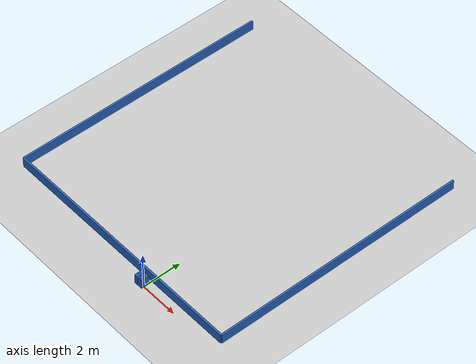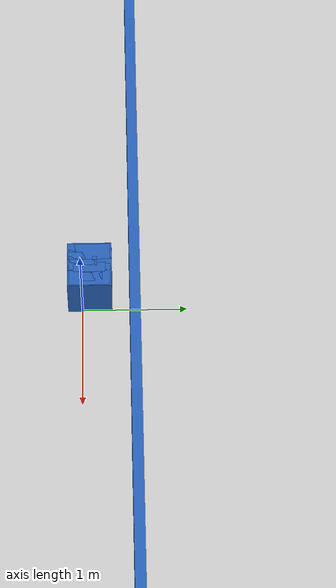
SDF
<?xml version="1.0" ?>
    <sdf version="1.5">
      <world name="default">
        <!-- A global light source -->
        <include>
          <uri>model://sun</uri>
        </include>
        <!-- A ground plane -->
        <include>
          <uri>model://ground_plane</uri>
        </include>

    <model name='libopen_space_final_T2B_120_90'>
      <static>1</static>
      <pose frame=''>-0.225000 0.075000 0.000000 0.000000 0.000000 0.000000</pose>
      <link name='link'>
        <inertial>
          <mass>1</mass>
          <inertia>
            <ixx>0.145833</ixx>
            <ixy>0</ixy>
            <ixz>0</ixz>
            <iyy>0.145833</iyy>
            <iyz>0</iyz>
            <izz>0.125</izz>
          </inertia>
        </inertial>
        <collision name='collision'>
          <geometry>
            <box>
              <size>0.11 0.24 1</size>
            </box>
          </geometry>
          <max_contacts>10</max_contacts>
          <surface>
            <contact>
              <ode/>
            </contact>
            <bounce/>
            <friction>
              <torsional>
                <ode/>
              </torsional>
              <ode/>
            </friction>
          </surface>
        </collision>
        <visual name='visual'>
          <geometry>
            <box>
              <size>0.11 0.24 1</size>
            </box>
          </geometry>
	    <material>
              <ambient>0.152000 0.379000 0.720000 1</ambient>
	      <diffuse>0.152000 0.379000 0.720000 1</diffuse>
          </material>
          <material>
            <script>
              <name>Gazebo/Grey</name>
              <uri>file://media/materials/scripts/gazebo.material</uri>
            </script>
          </material>
        </visual>
        <self_collide>0</self_collide>
        <kinematic>0</kinematic>
        <gravity>1</gravity>
      </link>
      <plugin name='libopen_space_final_T2B_120_90' filename='libopen_space_final_T2B_120_90.so'/>
    </model>

    <model name='libopen_space_final_T2B_140_77'>
      <static>1</static>
      <pose frame=''>-0.225000 0.075000 0.000000 0.000000 0.000000 0.000000</pose>
      <link name='link'>
        <inertial>
          <mass>1</mass>
          <inertia>
            <ixx>0.145833</ixx>
            <ixy>0</ixy>
            <ixz>0</ixz>
            <iyy>0.145833</iyy>
            <iyz>0</iyz>
            <izz>0.125</izz>
          </inertia>
        </inertial>
        <collision name='collision'>
          <geometry>
            <box>
              <size>0.46 0.42 1</size>
            </box>
          </geometry>
          <max_contacts>10</max_contacts>
          <surface>
            <contact>
              <ode/>
            </contact>
            <bounce/>
            <friction>
              <torsional>
                <ode/>
              </torsional>
              <ode/>
            </friction>
          </surface>
        </collision>
        <visual name='visual'>
          <geometry>
            <box>
              <size>0.46 0.42 1</size>
            </box>
          </geometry>
	    <material>
              <ambient>0.152000 0.379000 0.720000 1</ambient>
	      <diffuse>0.152000 0.379000 0.720000 1</diffuse>
          </material>
          <material>
            <script>
              <name>Gazebo/Grey</name>
              <uri>file://media/materials/scripts/gazebo.material</uri>
            </script>
          </material>
        </visual>
        <self_collide>0</self_collide>
        <kinematic>0</kinematic>
        <gravity>1</gravity>
      </link>
      <plugin name='libopen_space_final_T2B_140_77' filename='libopen_space_final_T2B_140_77.so'/>
    </model>

    <model name='libopen_space_final_T2B_111_12'>
      <static>1</static>
      <pose frame=''>-0.225000 0.075000 0.000000 0.000000 0.000000 0.000000</pose>
      <link name='link'>
        <inertial>
          <mass>1</mass>
          <inertia>
            <ixx>0.145833</ixx>
            <ixy>0</ixy>
            <ixz>0</ixz>
            <iyy>0.145833</iyy>
            <iyz>0</iyz>
            <izz>0.125</izz>
          </inertia>
        </inertial>
        <collision name='collision'>
          <geometry>
            <box>
              <size>0.36 0.16 1</size>
            </box>
          </geometry>
          <max_contacts>10</max_contacts>
          <surface>
            <contact>
              <ode/>
            </contact>
            <bounce/>
            <friction>
              <torsional>
                <ode/>
              </torsional>
              <ode/>
            </friction>
          </surface>
        </collision>
        <visual name='visual'>
          <geometry>
            <box>
              <size>0.36 0.16 1</size>
            </box>
          </geometry>
	    <material>
              <ambient>0.152000 0.379000 0.720000 1</ambient>
	      <diffuse>0.152000 0.379000 0.720000 1</diffuse>
          </material>
          <material>
            <script>
              <name>Gazebo/Grey</name>
              <uri>file://media/materials/scripts/gazebo.material</uri>
            </script>
          </material>
        </visual>
        <self_collide>0</self_collide>
        <kinematic>0</kinematic>
        <gravity>1</gravity>
      </link>
      <plugin name='libopen_space_final_T2B_111_12' filename='libopen_space_final_T2B_111_12.so'/>
    </model>

    <model name='libopen_space_final_T2B_112_54'>
      <static>1</static>
      <pose frame=''>-0.225000 0.075000 0.000000 0.000000 0.000000 0.000000</pose>
      <link name='link'>
        <inertial>
          <mass>1</mass>
          <inertia>
            <ixx>0.145833</ixx>
            <ixy>0</ixy>
            <ixz>0</ixz>
            <iyy>0.145833</iyy>
            <iyz>0</iyz>
            <izz>0.125</izz>
          </inertia>
        </inertial>
        <collision name='collision'>
          <geometry>
            <box>
              <size>0.27 0.41 1</size>
            </box>
          </geometry>
          <max_contacts>10</max_contacts>
          <surface>
            <contact>
              <ode/>
            </contact>
            <bounce/>
            <friction>
              <torsional>
                <ode/>
              </torsional>
              <ode/>
            </friction>
          </surface>
        </collision>
        <visual name='visual'>
          <geometry>
            <box>
              <size>0.27 0.41 1</size>
            </box>
          </geometry>
	    <material>
              <ambient>0.152000 0.379000 0.720000 1</ambient>
	      <diffuse>0.152000 0.379000 0.720000 1</diffuse>
          </material>
          <material>
            <script>
              <name>Gazebo/Grey</name>
              <uri>file://media/materials/scripts/gazebo.material</uri>
            </script>
          </material>
        </visual>
        <self_collide>0</self_collide>
        <kinematic>0</kinematic>
        <gravity>1</gravity>
      </link>
      <plugin name='libopen_space_final_T2B_112_54' filename='libopen_space_final_T2B_112_54.so'/>
    </model>

    <model name='libopen_space_final_T2B_100_36'>
      <static>1</static>
      <pose frame=''>-0.225000 0.075000 0.000000 0.000000 0.000000 0.000000</pose>
      <link name='link'>
        <inertial>
          <mass>1</mass>
          <inertia>
            <ixx>0.145833</ixx>
            <ixy>0</ixy>
            <ixz>0</ixz>
            <iyy>0.145833</iyy>
            <iyz>0</iyz>
            <izz>0.125</izz>
          </inertia>
        </inertial>
        <collision name='collision'>
          <geometry>
            <box>
              <size>0.44 0.39 1</size>
            </box>
          </geometry>
          <max_contacts>10</max_contacts>
          <surface>
            <contact>
              <ode/>
            </contact>
            <bounce/>
            <friction>
              <torsional>
                <ode/>
              </torsional>
              <ode/>
            </friction>
          </surface>
        </collision>
        <visual name='visual'>
          <geometry>
            <box>
              <size>0.44 0.39 1</size>
            </box>
          </geometry>
	    <material>
              <ambient>0.152000 0.379000 0.720000 1</ambient>
	      <diffuse>0.152000 0.379000 0.720000 1</diffuse>
          </material>
          <material>
            <script>
              <name>Gazebo/Grey</name>
              <uri>file://media/materials/scripts/gazebo.material</uri>
            </script>
          </material>
        </visual>
        <self_collide>0</self_collide>
        <kinematic>0</kinematic>
        <gravity>1</gravity>
      </link>
      <plugin name='libopen_space_final_T2B_100_36' filename='libopen_space_final_T2B_100_36.so'/>
    </model>

    <model name='libopen_space_final_T2B_73_39'>
      <static>1</static>
      <pose frame=''>-0.225000 0.075000 0.000000 0.000000 0.000000 0.000000</pose>
      <link name='link'>
        <inertial>
          <mass>1</mass>
          <inertia>
            <ixx>0.145833</ixx>
            <ixy>0</ixy>
            <ixz>0</ixz>
            <iyy>0.145833</iyy>
            <iyz>0</iyz>
            <izz>0.125</izz>
          </inertia>
        </inertial>
        <collision name='collision'>
          <geometry>
            <box>
              <size>0.11 0.37 1</size>
            </box>
          </geometry>
          <max_contacts>10</max_contacts>
          <surface>
            <contact>
              <ode/>
            </contact>
            <bounce/>
            <friction>
              <torsional>
                <ode/>
              </torsional>
              <ode/>
            </friction>
          </surface>
        </collision>
        <visual name='visual'>
          <geometry>
            <box>
              <size>0.11 0.37 1</size>
            </box>
          </geometry>
	    <material>
              <ambient>0.152000 0.379000 0.720000 1</ambient>
	      <diffuse>0.152000 0.379000 0.720000 1</diffuse>
          </material>
          <material>
            <script>
              <name>Gazebo/Grey</name>
              <uri>file://media/materials/scripts/gazebo.material</uri>
            </script>
          </material>
        </visual>
        <self_collide>0</self_collide>
        <kinematic>0</kinematic>
        <gravity>1</gravity>
      </link>
      <plugin name='libopen_space_final_T2B_73_39' filename='libopen_space_final_T2B_73_39.so'/>
    </model>

    <model name='libopen_space_final_T2B_77_58'>
      <static>1</static>
      <pose frame=''>-0.225000 0.075000 0.000000 0.000000 0.000000 0.000000</pose>
      <link name='link'>
        <inertial>
          <mass>1</mass>
          <inertia>
            <ixx>0.145833</ixx>
            <ixy>0</ixy>
            <ixz>0</ixz>
            <iyy>0.145833</iyy>
            <iyz>0</iyz>
            <izz>0.125</izz>
          </inertia>
        </inertial>
        <collision name='collision'>
          <geometry>
            <box>
              <size>0.17 0.14 1</size>
            </box>
          </geometry>
          <max_contacts>10</max_contacts>
          <surface>
            <contact>
              <ode/>
            </contact>
            <bounce/>
            <friction>
              <torsional>
                <ode/>
              </torsional>
              <ode/>
            </friction>
          </surface>
        </collision>
        <visual name='visual'>
          <geometry>
            <box>
              <size>0.17 0.14 1</size>
            </box>
          </geometry>
	    <material>
              <ambient>0.152000 0.379000 0.720000 1</ambient>
	      <diffuse>0.152000 0.379000 0.720000 1</diffuse>
          </material>
          <material>
            <script>
              <name>Gazebo/Grey</name>
              <uri>file://media/materials/scripts/gazebo.material</uri>
            </script>
          </material>
        </visual>
        <self_collide>0</self_collide>
        <kinematic>0</kinematic>
        <gravity>1</gravity>
      </link>
      <plugin name='libopen_space_final_T2B_77_58' filename='libopen_space_final_T2B_77_58.so'/>
    </model>

    <model name='libopen_space_final_T2B_125_59'>
      <static>1</static>
      <pose frame=''>-0.225000 0.075000 0.000000 0.000000 0.000000 0.000000</pose>
      <link name='link'>
        <inertial>
          <mass>1</mass>
          <inertia>
            <ixx>0.145833</ixx>
            <ixy>0</ixy>
            <ixz>0</ixz>
            <iyy>0.145833</iyy>
            <iyz>0</iyz>
            <izz>0.125</izz>
          </inertia>
        </inertial>
        <collision name='collision'>
          <geometry>
            <box>
              <size>0.16 0.30 1</size>
            </box>
          </geometry>
          <max_contacts>10</max_contacts>
          <surface>
            <contact>
              <ode/>
            </contact>
            <bounce/>
            <friction>
              <torsional>
                <ode/>
              </torsional>
              <ode/>
            </friction>
          </surface>
        </collision>
        <visual name='visual'>
          <geometry>
            <box>
              <size>0.16 0.30 1</size>
            </box>
          </geometry>
	    <material>
              <ambient>0.152000 0.379000 0.720000 1</ambient>
	      <diffuse>0.152000 0.379000 0.720000 1</diffuse>
          </material>
          <material>
            <script>
              <name>Gazebo/Grey</name>
              <uri>file://media/materials/scripts/gazebo.material</uri>
            </script>
          </material>
        </visual>
        <self_collide>0</self_collide>
        <kinematic>0</kinematic>
        <gravity>1</gravity>
      </link>
      <plugin name='libopen_space_final_T2B_125_59' filename='libopen_space_final_T2B_125_59.so'/>
    </model>

    <model name='libopen_space_final_T2B_106_71'>
      <static>1</static>
      <pose frame=''>-0.225000 0.075000 0.000000 0.000000 0.000000 0.000000</pose>
      <link name='link'>
        <inertial>
          <mass>1</mass>
          <inertia>
            <ixx>0.145833</ixx>
            <ixy>0</ixy>
            <ixz>0</ixz>
            <iyy>0.145833</iyy>
            <iyz>0</iyz>
            <izz>0.125</izz>
          </inertia>
        </inertial>
        <collision name='collision'>
          <geometry>
            <box>
              <size>0.11 0.42 1</size>
            </box>
          </geometry>
          <max_contacts>10</max_contacts>
          <surface>
            <contact>
              <ode/>
            </contact>
            <bounce/>
            <friction>
              <torsional>
                <ode/>
              </torsional>
              <ode/>
            </friction>
          </surface>
        </collision>
        <visual name='visual'>
          <geometry>
            <box>
              <size>0.11 0.42 1</size>
            </box>
          </geometry>
	    <material>
              <ambient>0.152000 0.379000 0.720000 1</ambient>
	      <diffuse>0.152000 0.379000 0.720000 1</diffuse>
          </material>
          <material>
            <script>
              <name>Gazebo/Grey</name>
              <uri>file://media/materials/scripts/gazebo.material</uri>
            </script>
          </material>
        </visual>
        <self_collide>0</self_collide>
        <kinematic>0</kinematic>
        <gravity>1</gravity>
      </link>
      <plugin name='libopen_space_final_T2B_106_71' filename='libopen_space_final_T2B_106_71.so'/>
    </model>

    <model name='libopen_space_final_T2B_83_66'>
      <static>1</static>
      <pose frame=''>-0.225000 0.075000 0.000000 0.000000 0.000000 0.000000</pose>
      <link name='link'>
        <inertial>
          <mass>1</mass>
          <inertia>
            <ixx>0.145833</ixx>
            <ixy>0</ixy>
            <ixz>0</ixz>
            <iyy>0.145833</iyy>
            <iyz>0</iyz>
            <izz>0.125</izz>
          </inertia>
        </inertial>
        <collision name='collision'>
          <geometry>
            <box>
              <size>0.14 0.41 1</size>
            </box>
          </geometry>
          <max_contacts>10</max_contacts>
          <surface>
            <contact>
              <ode/>
            </contact>
            <bounce/>
            <friction>
              <torsional>
                <ode/>
              </torsional>
              <ode/>
            </friction>
          </surface>
        </collision>
        <visual name='visual'>
          <geometry>
            <box>
              <size>0.14 0.41 1</size>
            </box>
          </geometry>
	    <material>
              <ambient>0.152000 0.379000 0.720000 1</ambient>
	      <diffuse>0.152000 0.379000 0.720000 1</diffuse>
          </material>
          <material>
            <script>
              <name>Gazebo/Grey</name>
              <uri>file://media/materials/scripts/gazebo.material</uri>
            </script>
          </material>
        </visual>
        <self_collide>0</self_collide>
        <kinematic>0</kinematic>
        <gravity>1</gravity>
      </link>
      <plugin name='libopen_space_final_T2B_83_66' filename='libopen_space_final_T2B_83_66.so'/>
    </model>

    <model name='libopen_space_final_T2B_84_5'>
      <static>1</static>
      <pose frame=''>-0.225000 0.075000 0.000000 0.000000 0.000000 0.000000</pose>
      <link name='link'>
        <inertial>
          <mass>1</mass>
          <inertia>
            <ixx>0.145833</ixx>
            <ixy>0</ixy>
            <ixz>0</ixz>
            <iyy>0.145833</iyy>
            <iyz>0</iyz>
            <izz>0.125</izz>
          </inertia>
        </inertial>
        <collision name='collision'>
          <geometry>
            <box>
              <size>0.37 0.24 1</size>
            </box>
          </geometry>
          <max_contacts>10</max_contacts>
          <surface>
            <contact>
              <ode/>
            </contact>
            <bounce/>
            <friction>
              <torsional>
                <ode/>
              </torsional>
              <ode/>
            </friction>
          </surface>
        </collision>
        <visual name='visual'>
          <geometry>
            <box>
              <size>0.37 0.24 1</size>
            </box>
          </geometry>
	    <material>
              <ambient>0.152000 0.379000 0.720000 1</ambient>
	      <diffuse>0.152000 0.379000 0.720000 1</diffuse>
          </material>
          <material>
            <script>
              <name>Gazebo/Grey</name>
              <uri>file://media/materials/scripts/gazebo.material</uri>
            </script>
          </material>
        </visual>
        <self_collide>0</self_collide>
        <kinematic>0</kinematic>
        <gravity>1</gravity>
      </link>
      <plugin name='libopen_space_final_T2B_84_5' filename='libopen_space_final_T2B_84_5.so'/>
    </model>

        <model name='bottom_wall'>
          <static>1</static>
          <pose frame=''>-2.25 0.5 0.000000 0.000000 0.000000 1.57079632</pose>
          <link name='link'>
            <inertial>
            <mass>1</mass>
            <inertia>
              <ixx>0.145833</ixx>
              <ixy>0</ixy>
              <ixz>0</ixz>
              <iyy>0.145833</iyy>
              <iyz>0</iyz>
              <izz>0.125</izz>
            </inertia>
            </inertial>
            <collision name='collision'>
            <geometry>
              <box>
              <size>0.1 13.5 1</size>
              </box>
            </geometry>
            <max_contacts>10</max_contacts>
            <surface>
              <contact>
              <ode/>
              </contact>
              <bounce/>
              <friction>
              <torsional>
                <ode/>
              </torsional>
              <ode/>
              </friction>
            </surface>
            </collision>
            <visual name='visual'>
            <geometry>
              <box>
              <size>0.1 13.5 1</size>
              </box>
            </geometry>
            <material>
              <ambient>0.152000 0.379000 0.720000 1</ambient>
            <diffuse>0.152000 0.379000 0.720000 1</diffuse>
            </material>
            <material>
              <script>
              <name>Gazebo/Grey</name>
              <uri>file://media/materials/scripts/gazebo.material</uri>
              </script>
            </material>
            </visual>
            <self_collide>0</self_collide>
            <kinematic>0</kinematic>
            <gravity>1</gravity>
          </link>
        </model>

        <model name='left_wall'>
          <static>1</static>
          <pose frame=''>-9 7.25 0.000000 0.000000 0.000000 0.000000</pose>
          <link name='link'>
            <inertial>
            <mass>1</mass>
            <inertia>
              <ixx>0.145833</ixx>
              <ixy>0</ixy>
              <ixz>0</ixz>
              <iyy>0.145833</iyy>
              <iyz>0</iyz>
              <izz>0.125</izz>
            </inertia>
            </inertial>
            <collision name='collision'>
            <geometry>
              <box>
              <size>0.1 13.5 1</size>
              </box>
            </geometry>
            <max_contacts>10</max_contacts>
            <surface>
              <contact>
              <ode/>
              </contact>
              <bounce/>
              <friction>
              <torsional>
                <ode/>
              </torsional>
              <ode/>
              </friction>
            </surface>
            </collision>
            <visual name='visual'>
            <geometry>
              <box>
              <size>0.1 13.5 1</size>
              </box>
            </geometry>
            <material>
              <ambient>0.152000 0.379000 0.720000 1</ambient>
            <diffuse>0.152000 0.379000 0.720000 1</diffuse>
            </material>
            <material>
              <script>
              <name>Gazebo/Grey</name>
              <uri>file://media/materials/scripts/gazebo.material</uri>
              </script>
            </material>
            </visual>
            <self_collide>0</self_collide>
            <kinematic>0</kinematic>
            <gravity>1</gravity>
          </link>
        </model>

        <model name='right_wall'>
          <static>1</static>
          <pose frame=''>4.5 7.25 0.000000 0.000000 0.000000 0.000000</pose>
          <link name='link'>
            <inertial>
            <mass>1</mass>
            <inertia>
              <ixx>0.145833</ixx>
              <ixy>0</ixy>
              <ixz>0</ixz>
              <iyy>0.145833</iyy>
              <iyz>0</iyz>
              <izz>0.125</izz>
            </inertia>
            </inertial>
            <collision name='collision'>
            <geometry>
              <box>
              <size>0.1 13.5 1</size>
              </box>
            </geometry>
            <max_contacts>10</max_contacts>
            <surface>
              <contact>
              <ode/>
              </contact>
              <bounce/>
              <friction>
              <torsional>
                <ode/>
              </torsional>
              <ode/>
              </friction>
            </surface>
            </collision>
            <visual name='visual'>
            <geometry>
              <box>
              <size>0.1 13.5 1</size>
              </box>
            </geometry>
            <material>
              <ambient>0.152000 0.379000 0.720000 1</ambient>
            <diffuse>0.152000 0.379000 0.720000 1</diffuse>
            </material>
            <material>
              <script>
              <name>Gazebo/Grey</name>
              <uri>file://media/materials/scripts/gazebo.material</uri>
              </script>
            </material>
            </visual>
            <self_collide>0</self_collide>
            <kinematic>0</kinematic>
            <gravity>1</gravity>
          </link>
        </model>

      </world>
    </sdf>"
